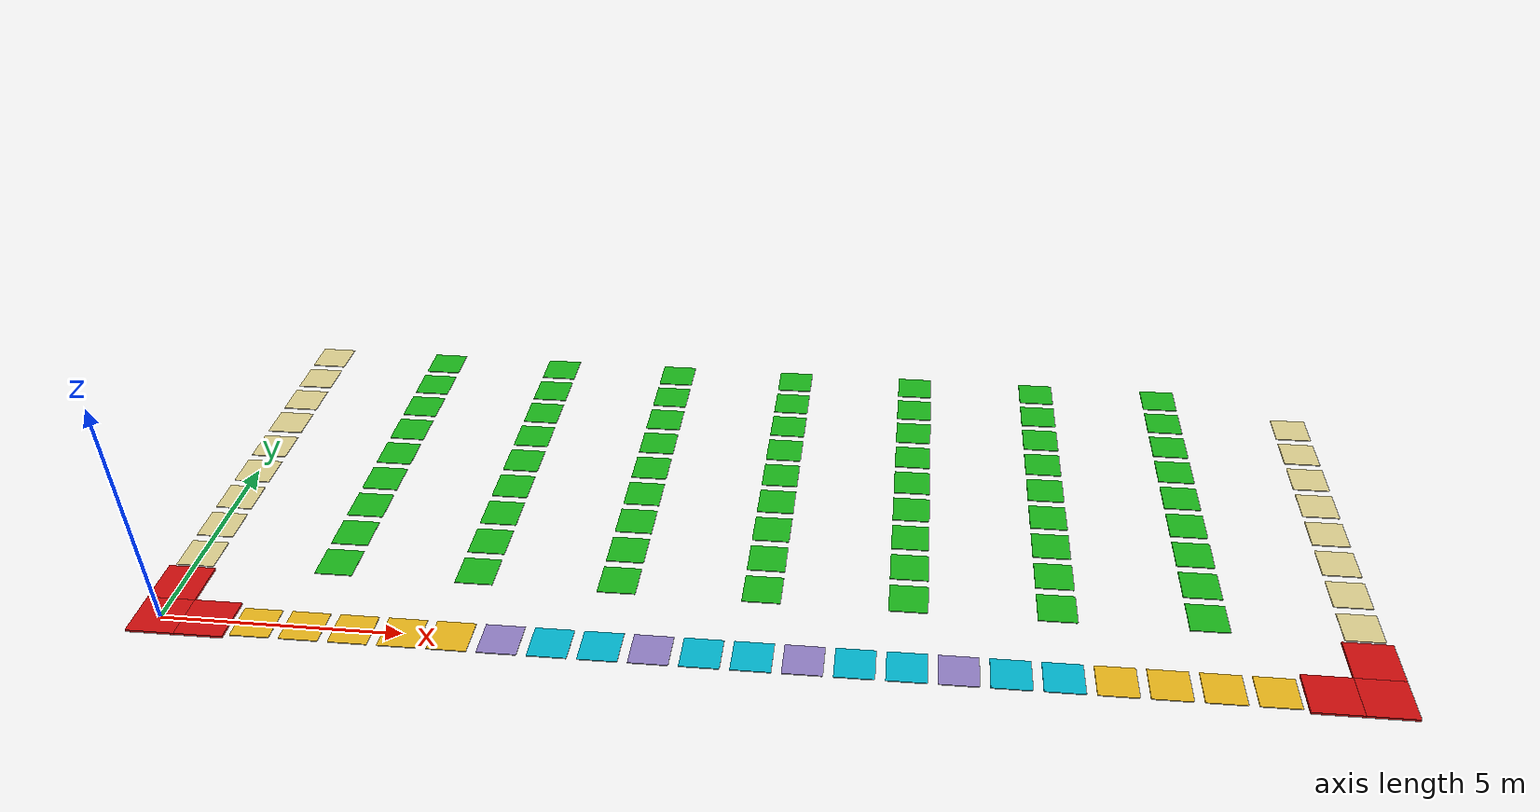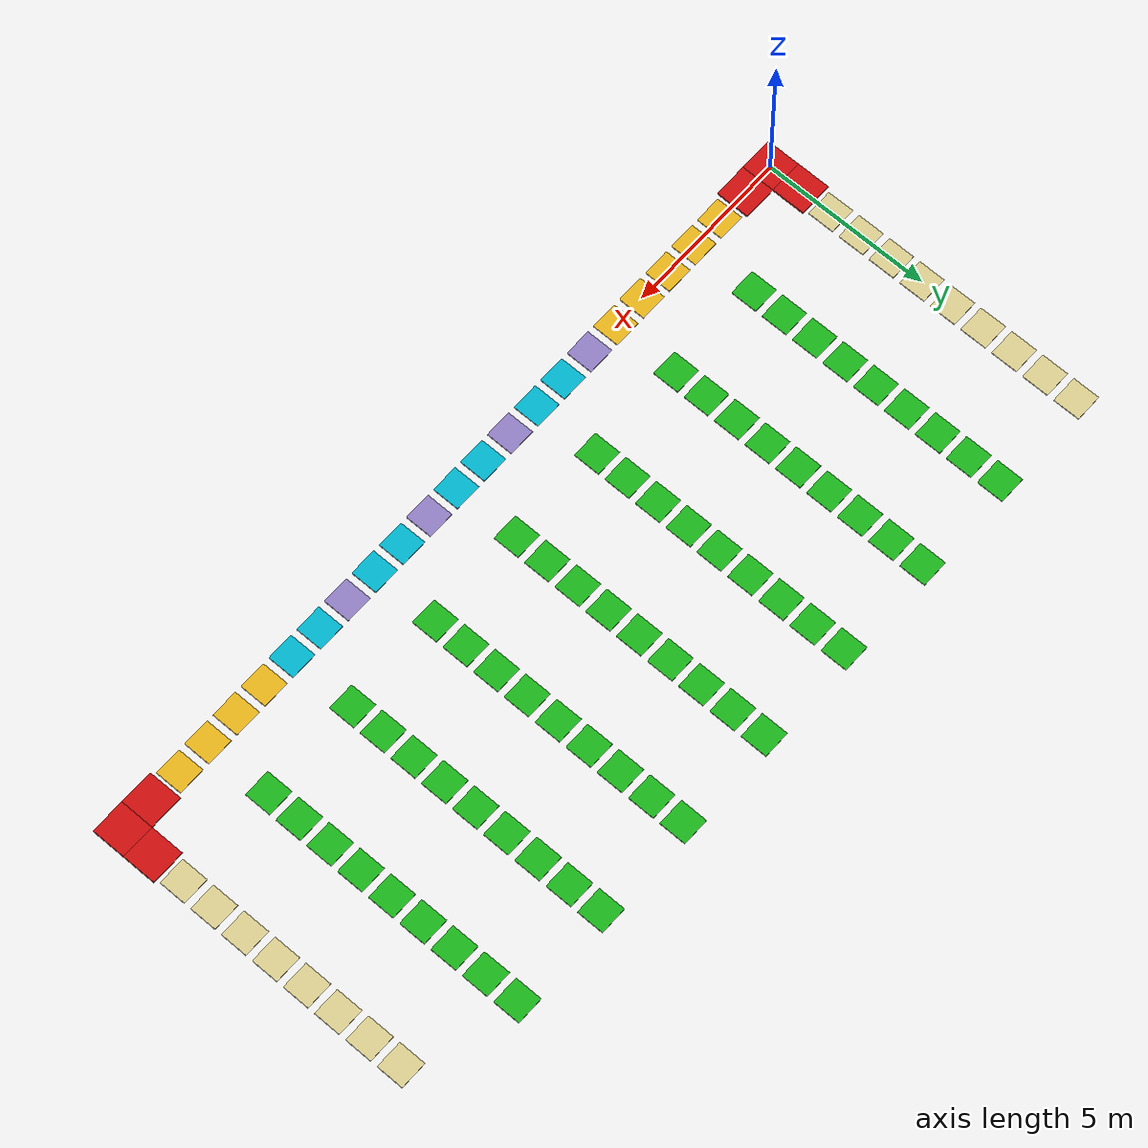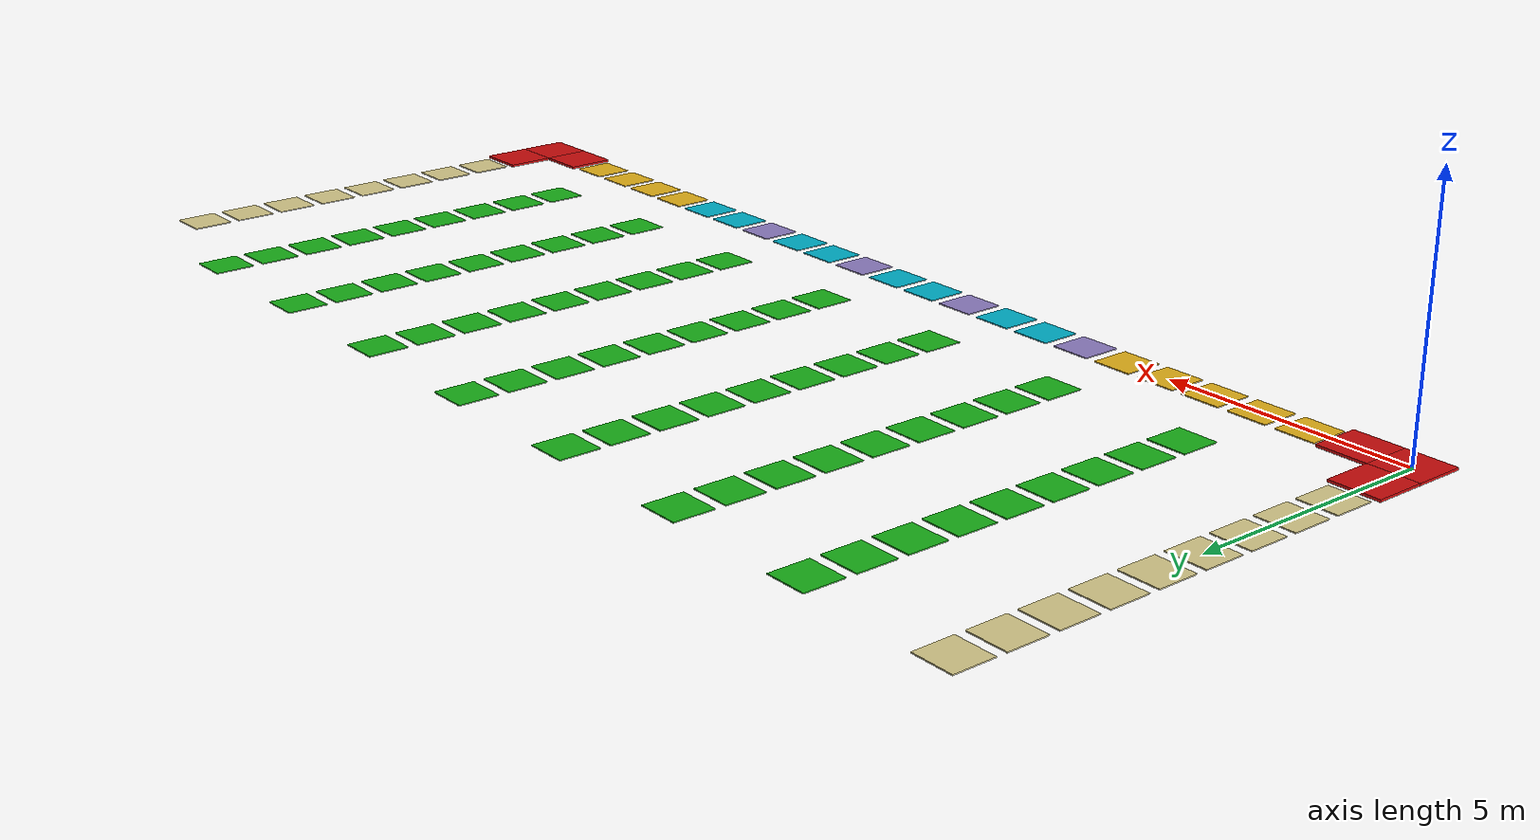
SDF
<sdf version="1.10">
 <world name="my_map_60">
  <model name="blocked_0000">
   <static>true</static>
   <pose>0.0
        0.0
        0.045
        0 0 0</pose>
   <link name="link">
    <visual name="visual">
     <geometry><box><size>1.0
                1.0
                0.05</size></box></geometry>
     <material><ambient>0.8 0.05 0.05 1</ambient><diffuse>0.8 0.05 0.05 1</diffuse></material>
    </visual>
   </link>
  </model>
  <model name="blocked_0001">
   <static>true</static>
   <pose>0.0
        1.0
        0.045
        0 0 0</pose>
   <link name="link">
    <visual name="visual">
     <geometry><box><size>1.0
                1.0
                0.05</size></box></geometry>
     <material><ambient>0.8 0.05 0.05 1</ambient><diffuse>0.8 0.05 0.05 1</diffuse></material>
    </visual>
   </link>
  </model>
  <model name="blocked_0004">
   <static>true</static>
   <pose>1.0
        0.0
        0.045
        0 0 0</pose>
   <link name="link">
    <visual name="visual">
     <geometry><box><size>1.0
                1.0
                0.05</size></box></geometry>
     <material><ambient>0.8 0.05 0.05 1</ambient><diffuse>0.8 0.05 0.05 1</diffuse></material>
    </visual>
   </link>
  </model>
  <model name="blocked_0006">
   <static>true</static>
   <pose>23.0
        0.0
        0.045
        0 0 0</pose>
   <link name="link">
    <visual name="visual">
     <geometry><box><size>1.0
                1.0
                0.05</size></box></geometry>
     <material><ambient>0.8 0.05 0.05 1</ambient><diffuse>0.8 0.05 0.05 1</diffuse></material>
    </visual>
   </link>
  </model>
  <model name="blocked_0008">
   <static>true</static>
   <pose>24.0
        0.0
        0.045
        0 0 0</pose>
   <link name="link">
    <visual name="visual">
     <geometry><box><size>1.0
                1.0
                0.05</size></box></geometry>
     <material><ambient>0.8 0.05 0.05 1</ambient><diffuse>0.8 0.05 0.05 1</diffuse></material>
    </visual>
   </link>
  </model>
  <model name="blocked_0009">
   <static>true</static>
   <pose>24.0
        1.0
        0.045
        0 0 0</pose>
   <link name="link">
    <visual name="visual">
     <geometry><box><size>1.0
                1.0
                0.05</size></box></geometry>
     <material><ambient>0.8 0.05 0.05 1</ambient><diffuse>0.8 0.05 0.05 1</diffuse></material>
    </visual>
   </link>
  </model>
  <model name="staging_045">
   <static>true</static>
   <pose>0.0
        10.0
        0.02
        0 0 0</pose>
   <link name="link">
    <visual name="visual">
     <geometry><box><size>0.8
                0.8
                0.02</size></box></geometry>
     <material><ambient>0.85 0.80 0.55 1</ambient><diffuse>0.85 0.80 0.55 1</diffuse></material>
    </visual>
   </link>
  </model>
  <model name="shelf_141">
   <static>true</static>
   <pose>3.0
        10.0
        0.02
        0 0 0</pose>
   <link name="link">
    <visual name="visual">
     <geometry><box><size>0.8
                0.8
                0.02</size></box></geometry>
     <material><ambient>0.10 0.70 0.10 1</ambient><diffuse>0.10 0.70 0.10 1</diffuse></material>
    </visual>
   </link>
  </model>
  <model name="shelf_142">
   <static>true</static>
   <pose>6.0
        10.0
        0.02
        0 0 0</pose>
   <link name="link">
    <visual name="visual">
     <geometry><box><size>0.8
                0.8
                0.02</size></box></geometry>
     <material><ambient>0.10 0.70 0.10 1</ambient><diffuse>0.10 0.70 0.10 1</diffuse></material>
    </visual>
   </link>
  </model>
  <model name="shelf_143">
   <static>true</static>
   <pose>9.0
        10.0
        0.02
        0 0 0</pose>
   <link name="link">
    <visual name="visual">
     <geometry><box><size>0.8
                0.8
                0.02</size></box></geometry>
     <material><ambient>0.10 0.70 0.10 1</ambient><diffuse>0.10 0.70 0.10 1</diffuse></material>
    </visual>
   </link>
  </model>
  <model name="shelf_144">
   <static>true</static>
   <pose>12.0
        10.0
        0.02
        0 0 0</pose>
   <link name="link">
    <visual name="visual">
     <geometry><box><size>0.8
                0.8
                0.02</size></box></geometry>
     <material><ambient>0.10 0.70 0.10 1</ambient><diffuse>0.10 0.70 0.10 1</diffuse></material>
    </visual>
   </link>
  </model>
  <model name="shelf_145">
   <static>true</static>
   <pose>15.0
        10.0
        0.02
        0 0 0</pose>
   <link name="link">
    <visual name="visual">
     <geometry><box><size>0.8
                0.8
                0.02</size></box></geometry>
     <material><ambient>0.10 0.70 0.10 1</ambient><diffuse>0.10 0.70 0.10 1</diffuse></material>
    </visual>
   </link>
  </model>
  <model name="shelf_146">
   <static>true</static>
   <pose>18.0
        10.0
        0.02
        0 0 0</pose>
   <link name="link">
    <visual name="visual">
     <geometry><box><size>0.8
                0.8
                0.02</size></box></geometry>
     <material><ambient>0.10 0.70 0.10 1</ambient><diffuse>0.10 0.70 0.10 1</diffuse></material>
    </visual>
   </link>
  </model>
  <model name="shelf_147">
   <static>true</static>
   <pose>21.0
        10.0
        0.02
        0 0 0</pose>
   <link name="link">
    <visual name="visual">
     <geometry><box><size>0.8
                0.8
                0.02</size></box></geometry>
     <material><ambient>0.10 0.70 0.10 1</ambient><diffuse>0.10 0.70 0.10 1</diffuse></material>
    </visual>
   </link>
  </model>
  <model name="staging_047">
   <static>true</static>
   <pose>0.0
        9.0
        0.02
        0 0 0</pose>
   <link name="link">
    <visual name="visual">
     <geometry><box><size>0.8
                0.8
                0.02</size></box></geometry>
     <material><ambient>0.85 0.80 0.55 1</ambient><diffuse>0.85 0.80 0.55 1</diffuse></material>
    </visual>
   </link>
  </model>
  <model name="shelf_148">
   <static>true</static>
   <pose>3.0
        9.0
        0.02
        0 0 0</pose>
   <link name="link">
    <visual name="visual">
     <geometry><box><size>0.8
                0.8
                0.02</size></box></geometry>
     <material><ambient>0.10 0.70 0.10 1</ambient><diffuse>0.10 0.70 0.10 1</diffuse></material>
    </visual>
   </link>
  </model>
  <model name="shelf_149">
   <static>true</static>
   <pose>6.0
        9.0
        0.02
        0 0 0</pose>
   <link name="link">
    <visual name="visual">
     <geometry><box><size>0.8
                0.8
                0.02</size></box></geometry>
     <material><ambient>0.10 0.70 0.10 1</ambient><diffuse>0.10 0.70 0.10 1</diffuse></material>
    </visual>
   </link>
  </model>
  <model name="shelf_150">
   <static>true</static>
   <pose>9.0
        9.0
        0.02
        0 0 0</pose>
   <link name="link">
    <visual name="visual">
     <geometry><box><size>0.8
                0.8
                0.02</size></box></geometry>
     <material><ambient>0.10 0.70 0.10 1</ambient><diffuse>0.10 0.70 0.10 1</diffuse></material>
    </visual>
   </link>
  </model>
  <model name="shelf_151">
   <static>true</static>
   <pose>12.0
        9.0
        0.02
        0 0 0</pose>
   <link name="link">
    <visual name="visual">
     <geometry><box><size>0.8
                0.8
                0.02</size></box></geometry>
     <material><ambient>0.10 0.70 0.10 1</ambient><diffuse>0.10 0.70 0.10 1</diffuse></material>
    </visual>
   </link>
  </model>
  <model name="shelf_152">
   <static>true</static>
   <pose>15.0
        9.0
        0.02
        0 0 0</pose>
   <link name="link">
    <visual name="visual">
     <geometry><box><size>0.8
                0.8
                0.02</size></box></geometry>
     <material><ambient>0.10 0.70 0.10 1</ambient><diffuse>0.10 0.70 0.10 1</diffuse></material>
    </visual>
   </link>
  </model>
  <model name="shelf_153">
   <static>true</static>
   <pose>18.0
        9.0
        0.02
        0 0 0</pose>
   <link name="link">
    <visual name="visual">
     <geometry><box><size>0.8
                0.8
                0.02</size></box></geometry>
     <material><ambient>0.10 0.70 0.10 1</ambient><diffuse>0.10 0.70 0.10 1</diffuse></material>
    </visual>
   </link>
  </model>
  <model name="shelf_154">
   <static>true</static>
   <pose>21.0
        9.0
        0.02
        0 0 0</pose>
   <link name="link">
    <visual name="visual">
     <geometry><box><size>0.8
                0.8
                0.02</size></box></geometry>
     <material><ambient>0.10 0.70 0.10 1</ambient><diffuse>0.10 0.70 0.10 1</diffuse></material>
    </visual>
   </link>
  </model>
  <model name="staging_048">
   <static>true</static>
   <pose>24.0
        9.0
        0.02
        0 0 0</pose>
   <link name="link">
    <visual name="visual">
     <geometry><box><size>0.8
                0.8
                0.02</size></box></geometry>
     <material><ambient>0.85 0.80 0.55 1</ambient><diffuse>0.85 0.80 0.55 1</diffuse></material>
    </visual>
   </link>
  </model>
  <model name="staging_049">
   <static>true</static>
   <pose>0.0
        8.0
        0.02
        0 0 0</pose>
   <link name="link">
    <visual name="visual">
     <geometry><box><size>0.8
                0.8
                0.02</size></box></geometry>
     <material><ambient>0.85 0.80 0.55 1</ambient><diffuse>0.85 0.80 0.55 1</diffuse></material>
    </visual>
   </link>
  </model>
  <model name="shelf_155">
   <static>true</static>
   <pose>3.0
        8.0
        0.02
        0 0 0</pose>
   <link name="link">
    <visual name="visual">
     <geometry><box><size>0.8
                0.8
                0.02</size></box></geometry>
     <material><ambient>0.10 0.70 0.10 1</ambient><diffuse>0.10 0.70 0.10 1</diffuse></material>
    </visual>
   </link>
  </model>
  <model name="shelf_156">
   <static>true</static>
   <pose>6.0
        8.0
        0.02
        0 0 0</pose>
   <link name="link">
    <visual name="visual">
     <geometry><box><size>0.8
                0.8
                0.02</size></box></geometry>
     <material><ambient>0.10 0.70 0.10 1</ambient><diffuse>0.10 0.70 0.10 1</diffuse></material>
    </visual>
   </link>
  </model>
  <model name="shelf_157">
   <static>true</static>
   <pose>9.0
        8.0
        0.02
        0 0 0</pose>
   <link name="link">
    <visual name="visual">
     <geometry><box><size>0.8
                0.8
                0.02</size></box></geometry>
     <material><ambient>0.10 0.70 0.10 1</ambient><diffuse>0.10 0.70 0.10 1</diffuse></material>
    </visual>
   </link>
  </model>
  <model name="shelf_158">
   <static>true</static>
   <pose>12.0
        8.0
        0.02
        0 0 0</pose>
   <link name="link">
    <visual name="visual">
     <geometry><box><size>0.8
                0.8
                0.02</size></box></geometry>
     <material><ambient>0.10 0.70 0.10 1</ambient><diffuse>0.10 0.70 0.10 1</diffuse></material>
    </visual>
   </link>
  </model>
  <model name="shelf_159">
   <static>true</static>
   <pose>15.0
        8.0
        0.02
        0 0 0</pose>
   <link name="link">
    <visual name="visual">
     <geometry><box><size>0.8
                0.8
                0.02</size></box></geometry>
     <material><ambient>0.10 0.70 0.10 1</ambient><diffuse>0.10 0.70 0.10 1</diffuse></material>
    </visual>
   </link>
  </model>
  <model name="shelf_160">
   <static>true</static>
   <pose>18.0
        8.0
        0.02
        0 0 0</pose>
   <link name="link">
    <visual name="visual">
     <geometry><box><size>0.8
                0.8
                0.02</size></box></geometry>
     <material><ambient>0.10 0.70 0.10 1</ambient><diffuse>0.10 0.70 0.10 1</diffuse></material>
    </visual>
   </link>
  </model>
  <model name="shelf_161">
   <static>true</static>
   <pose>21.0
        8.0
        0.02
        0 0 0</pose>
   <link name="link">
    <visual name="visual">
     <geometry><box><size>0.8
                0.8
                0.02</size></box></geometry>
     <material><ambient>0.10 0.70 0.10 1</ambient><diffuse>0.10 0.70 0.10 1</diffuse></material>
    </visual>
   </link>
  </model>
  <model name="staging_050">
   <static>true</static>
   <pose>24.0
        8.0
        0.02
        0 0 0</pose>
   <link name="link">
    <visual name="visual">
     <geometry><box><size>0.8
                0.8
                0.02</size></box></geometry>
     <material><ambient>0.85 0.80 0.55 1</ambient><diffuse>0.85 0.80 0.55 1</diffuse></material>
    </visual>
   </link>
  </model>
  <model name="staging_051">
   <static>true</static>
   <pose>0.0
        7.0
        0.02
        0 0 0</pose>
   <link name="link">
    <visual name="visual">
     <geometry><box><size>0.8
                0.8
                0.02</size></box></geometry>
     <material><ambient>0.85 0.80 0.55 1</ambient><diffuse>0.85 0.80 0.55 1</diffuse></material>
    </visual>
   </link>
  </model>
  <model name="shelf_162">
   <static>true</static>
   <pose>3.0
        7.0
        0.02
        0 0 0</pose>
   <link name="link">
    <visual name="visual">
     <geometry><box><size>0.8
                0.8
                0.02</size></box></geometry>
     <material><ambient>0.10 0.70 0.10 1</ambient><diffuse>0.10 0.70 0.10 1</diffuse></material>
    </visual>
   </link>
  </model>
  <model name="shelf_163">
   <static>true</static>
   <pose>6.0
        7.0
        0.02
        0 0 0</pose>
   <link name="link">
    <visual name="visual">
     <geometry><box><size>0.8
                0.8
                0.02</size></box></geometry>
     <material><ambient>0.10 0.70 0.10 1</ambient><diffuse>0.10 0.70 0.10 1</diffuse></material>
    </visual>
   </link>
  </model>
  <model name="shelf_164">
   <static>true</static>
   <pose>9.0
        7.0
        0.02
        0 0 0</pose>
   <link name="link">
    <visual name="visual">
     <geometry><box><size>0.8
                0.8
                0.02</size></box></geometry>
     <material><ambient>0.10 0.70 0.10 1</ambient><diffuse>0.10 0.70 0.10 1</diffuse></material>
    </visual>
   </link>
  </model>
  <model name="shelf_165">
   <static>true</static>
   <pose>12.0
        7.0
        0.02
        0 0 0</pose>
   <link name="link">
    <visual name="visual">
     <geometry><box><size>0.8
                0.8
                0.02</size></box></geometry>
     <material><ambient>0.10 0.70 0.10 1</ambient><diffuse>0.10 0.70 0.10 1</diffuse></material>
    </visual>
   </link>
  </model>
  <model name="shelf_166">
   <static>true</static>
   <pose>15.0
        7.0
        0.02
        0 0 0</pose>
   <link name="link">
    <visual name="visual">
     <geometry><box><size>0.8
                0.8
                0.02</size></box></geometry>
     <material><ambient>0.10 0.70 0.10 1</ambient><diffuse>0.10 0.70 0.10 1</diffuse></material>
    </visual>
   </link>
  </model>
  <model name="shelf_167">
   <static>true</static>
   <pose>18.0
        7.0
        0.02
        0 0 0</pose>
   <link name="link">
    <visual name="visual">
     <geometry><box><size>0.8
                0.8
                0.02</size></box></geometry>
     <material><ambient>0.10 0.70 0.10 1</ambient><diffuse>0.10 0.70 0.10 1</diffuse></material>
    </visual>
   </link>
  </model>
  <model name="shelf_168">
   <static>true</static>
   <pose>21.0
        7.0
        0.02
        0 0 0</pose>
   <link name="link">
    <visual name="visual">
     <geometry><box><size>0.8
                0.8
                0.02</size></box></geometry>
     <material><ambient>0.10 0.70 0.10 1</ambient><diffuse>0.10 0.70 0.10 1</diffuse></material>
    </visual>
   </link>
  </model>
  <model name="staging_052">
   <static>true</static>
   <pose>24.0
        7.0
        0.02
        0 0 0</pose>
   <link name="link">
    <visual name="visual">
     <geometry><box><size>0.8
                0.8
                0.02</size></box></geometry>
     <material><ambient>0.85 0.80 0.55 1</ambient><diffuse>0.85 0.80 0.55 1</diffuse></material>
    </visual>
   </link>
  </model>
  <model name="staging_053">
   <static>true</static>
   <pose>0.0
        6.0
        0.02
        0 0 0</pose>
   <link name="link">
    <visual name="visual">
     <geometry><box><size>0.8
                0.8
                0.02</size></box></geometry>
     <material><ambient>0.85 0.80 0.55 1</ambient><diffuse>0.85 0.80 0.55 1</diffuse></material>
    </visual>
   </link>
  </model>
  <model name="shelf_169">
   <static>true</static>
   <pose>3.0
        6.0
        0.02
        0 0 0</pose>
   <link name="link">
    <visual name="visual">
     <geometry><box><size>0.8
                0.8
                0.02</size></box></geometry>
     <material><ambient>0.10 0.70 0.10 1</ambient><diffuse>0.10 0.70 0.10 1</diffuse></material>
    </visual>
   </link>
  </model>
  <model name="shelf_170">
   <static>true</static>
   <pose>6.0
        6.0
        0.02
        0 0 0</pose>
   <link name="link">
    <visual name="visual">
     <geometry><box><size>0.8
                0.8
                0.02</size></box></geometry>
     <material><ambient>0.10 0.70 0.10 1</ambient><diffuse>0.10 0.70 0.10 1</diffuse></material>
    </visual>
   </link>
  </model>
  <model name="shelf_171">
   <static>true</static>
   <pose>9.0
        6.0
        0.02
        0 0 0</pose>
   <link name="link">
    <visual name="visual">
     <geometry><box><size>0.8
                0.8
                0.02</size></box></geometry>
     <material><ambient>0.10 0.70 0.10 1</ambient><diffuse>0.10 0.70 0.10 1</diffuse></material>
    </visual>
   </link>
  </model>
  <model name="shelf_172">
   <static>true</static>
   <pose>12.0
        6.0
        0.02
        0 0 0</pose>
   <link name="link">
    <visual name="visual">
     <geometry><box><size>0.8
                0.8
                0.02</size></box></geometry>
     <material><ambient>0.10 0.70 0.10 1</ambient><diffuse>0.10 0.70 0.10 1</diffuse></material>
    </visual>
   </link>
  </model>
  <model name="shelf_173">
   <static>true</static>
   <pose>15.0
        6.0
        0.02
        0 0 0</pose>
   <link name="link">
    <visual name="visual">
     <geometry><box><size>0.8
                0.8
                0.02</size></box></geometry>
     <material><ambient>0.10 0.70 0.10 1</ambient><diffuse>0.10 0.70 0.10 1</diffuse></material>
    </visual>
   </link>
  </model>
  <model name="shelf_174">
   <static>true</static>
   <pose>18.0
        6.0
        0.02
        0 0 0</pose>
   <link name="link">
    <visual name="visual">
     <geometry><box><size>0.8
                0.8
                0.02</size></box></geometry>
     <material><ambient>0.10 0.70 0.10 1</ambient><diffuse>0.10 0.70 0.10 1</diffuse></material>
    </visual>
   </link>
  </model>
  <model name="shelf_175">
   <static>true</static>
   <pose>21.0
        6.0
        0.02
        0 0 0</pose>
   <link name="link">
    <visual name="visual">
     <geometry><box><size>0.8
                0.8
                0.02</size></box></geometry>
     <material><ambient>0.10 0.70 0.10 1</ambient><diffuse>0.10 0.70 0.10 1</diffuse></material>
    </visual>
   </link>
  </model>
  <model name="staging_054">
   <static>true</static>
   <pose>24.0
        6.0
        0.02
        0 0 0</pose>
   <link name="link">
    <visual name="visual">
     <geometry><box><size>0.8
                0.8
                0.02</size></box></geometry>
     <material><ambient>0.85 0.80 0.55 1</ambient><diffuse>0.85 0.80 0.55 1</diffuse></material>
    </visual>
   </link>
  </model>
  <model name="staging_055">
   <static>true</static>
   <pose>0.0
        5.0
        0.02
        0 0 0</pose>
   <link name="link">
    <visual name="visual">
     <geometry><box><size>0.8
                0.8
                0.02</size></box></geometry>
     <material><ambient>0.85 0.80 0.55 1</ambient><diffuse>0.85 0.80 0.55 1</diffuse></material>
    </visual>
   </link>
  </model>
  <model name="shelf_176">
   <static>true</static>
   <pose>3.0
        5.0
        0.02
        0 0 0</pose>
   <link name="link">
    <visual name="visual">
     <geometry><box><size>0.8
                0.8
                0.02</size></box></geometry>
     <material><ambient>0.10 0.70 0.10 1</ambient><diffuse>0.10 0.70 0.10 1</diffuse></material>
    </visual>
   </link>
  </model>
  <model name="shelf_177">
   <static>true</static>
   <pose>6.0
        5.0
        0.02
        0 0 0</pose>
   <link name="link">
    <visual name="visual">
     <geometry><box><size>0.8
                0.8
                0.02</size></box></geometry>
     <material><ambient>0.10 0.70 0.10 1</ambient><diffuse>0.10 0.70 0.10 1</diffuse></material>
    </visual>
   </link>
  </model>
  <model name="shelf_178">
   <static>true</static>
   <pose>9.0
        5.0
        0.02
        0 0 0</pose>
   <link name="link">
    <visual name="visual">
     <geometry><box><size>0.8
                0.8
                0.02</size></box></geometry>
     <material><ambient>0.10 0.70 0.10 1</ambient><diffuse>0.10 0.70 0.10 1</diffuse></material>
    </visual>
   </link>
  </model>
  <model name="shelf_179">
   <static>true</static>
   <pose>12.0
        5.0
        0.02
        0 0 0</pose>
   <link name="link">
    <visual name="visual">
     <geometry><box><size>0.8
                0.8
                0.02</size></box></geometry>
     <material><ambient>0.10 0.70 0.10 1</ambient><diffuse>0.10 0.70 0.10 1</diffuse></material>
    </visual>
   </link>
  </model>
  <model name="shelf_180">
   <static>true</static>
   <pose>15.0
        5.0
        0.02
        0 0 0</pose>
   <link name="link">
    <visual name="visual">
     <geometry><box><size>0.8
                0.8
                0.02</size></box></geometry>
     <material><ambient>0.10 0.70 0.10 1</ambient><diffuse>0.10 0.70 0.10 1</diffuse></material>
    </visual>
   </link>
  </model>
  <model name="shelf_181">
   <static>true</static>
   <pose>18.0
        5.0
        0.02
        0 0 0</pose>
   <link name="link">
    <visual name="visual">
     <geometry><box><size>0.8
                0.8
                0.02</size></box></geometry>
     <material><ambient>0.10 0.70 0.10 1</ambient><diffuse>0.10 0.70 0.10 1</diffuse></material>
    </visual>
   </link>
  </model>
  <model name="shelf_182">
   <static>true</static>
   <pose>21.0
        5.0
        0.02
        0 0 0</pose>
   <link name="link">
    <visual name="visual">
     <geometry><box><size>0.8
                0.8
                0.02</size></box></geometry>
     <material><ambient>0.10 0.70 0.10 1</ambient><diffuse>0.10 0.70 0.10 1</diffuse></material>
    </visual>
   </link>
  </model>
  <model name="staging_056">
   <static>true</static>
   <pose>24.0
        5.0
        0.02
        0 0 0</pose>
   <link name="link">
    <visual name="visual">
     <geometry><box><size>0.8
                0.8
                0.02</size></box></geometry>
     <material><ambient>0.85 0.80 0.55 1</ambient><diffuse>0.85 0.80 0.55 1</diffuse></material>
    </visual>
   </link>
  </model>
  <model name="staging_057">
   <static>true</static>
   <pose>0.0
        4.0
        0.02
        0 0 0</pose>
   <link name="link">
    <visual name="visual">
     <geometry><box><size>0.8
                0.8
                0.02</size></box></geometry>
     <material><ambient>0.85 0.80 0.55 1</ambient><diffuse>0.85 0.80 0.55 1</diffuse></material>
    </visual>
   </link>
  </model>
  <model name="shelf_183">
   <static>true</static>
   <pose>3.0
        4.0
        0.02
        0 0 0</pose>
   <link name="link">
    <visual name="visual">
     <geometry><box><size>0.8
                0.8
                0.02</size></box></geometry>
     <material><ambient>0.10 0.70 0.10 1</ambient><diffuse>0.10 0.70 0.10 1</diffuse></material>
    </visual>
   </link>
  </model>
  <model name="shelf_184">
   <static>true</static>
   <pose>6.0
        4.0
        0.02
        0 0 0</pose>
   <link name="link">
    <visual name="visual">
     <geometry><box><size>0.8
                0.8
                0.02</size></box></geometry>
     <material><ambient>0.10 0.70 0.10 1</ambient><diffuse>0.10 0.70 0.10 1</diffuse></material>
    </visual>
   </link>
  </model>
  <model name="shelf_185">
   <static>true</static>
   <pose>9.0
        4.0
        0.02
        0 0 0</pose>
   <link name="link">
    <visual name="visual">
     <geometry><box><size>0.8
                0.8
                0.02</size></box></geometry>
     <material><ambient>0.10 0.70 0.10 1</ambient><diffuse>0.10 0.70 0.10 1</diffuse></material>
    </visual>
   </link>
  </model>
  <model name="shelf_186">
   <static>true</static>
   <pose>12.0
        4.0
        0.02
        0 0 0</pose>
   <link name="link">
    <visual name="visual">
     <geometry><box><size>0.8
                0.8
                0.02</size></box></geometry>
     <material><ambient>0.10 0.70 0.10 1</ambient><diffuse>0.10 0.70 0.10 1</diffuse></material>
    </visual>
   </link>
  </model>
  <model name="shelf_187">
   <static>true</static>
   <pose>15.0
        4.0
        0.02
        0 0 0</pose>
   <link name="link">
    <visual name="visual">
     <geometry><box><size>0.8
                0.8
                0.02</size></box></geometry>
     <material><ambient>0.10 0.70 0.10 1</ambient><diffuse>0.10 0.70 0.10 1</diffuse></material>
    </visual>
   </link>
  </model>
  <model name="shelf_188">
   <static>true</static>
   <pose>18.0
        4.0
        0.02
        0 0 0</pose>
   <link name="link">
    <visual name="visual">
     <geometry><box><size>0.8
                0.8
                0.02</size></box></geometry>
     <material><ambient>0.10 0.70 0.10 1</ambient><diffuse>0.10 0.70 0.10 1</diffuse></material>
    </visual>
   </link>
  </model>
  <model name="shelf_189">
   <static>true</static>
   <pose>21.0
        4.0
        0.02
        0 0 0</pose>
   <link name="link">
    <visual name="visual">
     <geometry><box><size>0.8
                0.8
                0.02</size></box></geometry>
     <material><ambient>0.10 0.70 0.10 1</ambient><diffuse>0.10 0.70 0.10 1</diffuse></material>
    </visual>
   </link>
  </model>
  <model name="staging_058">
   <static>true</static>
   <pose>24.0
        4.0
        0.02
        0 0 0</pose>
   <link name="link">
    <visual name="visual">
     <geometry><box><size>0.8
                0.8
                0.02</size></box></geometry>
     <material><ambient>0.85 0.80 0.55 1</ambient><diffuse>0.85 0.80 0.55 1</diffuse></material>
    </visual>
   </link>
  </model>
  <model name="staging_059">
   <static>true</static>
   <pose>0.0
        3.0
        0.02
        0 0 0</pose>
   <link name="link">
    <visual name="visual">
     <geometry><box><size>0.8
                0.8
                0.02</size></box></geometry>
     <material><ambient>0.85 0.80 0.55 1</ambient><diffuse>0.85 0.80 0.55 1</diffuse></material>
    </visual>
   </link>
  </model>
  <model name="shelf_190">
   <static>true</static>
   <pose>3.0
        3.0
        0.02
        0 0 0</pose>
   <link name="link">
    <visual name="visual">
     <geometry><box><size>0.8
                0.8
                0.02</size></box></geometry>
     <material><ambient>0.10 0.70 0.10 1</ambient><diffuse>0.10 0.70 0.10 1</diffuse></material>
    </visual>
   </link>
  </model>
  <model name="shelf_191">
   <static>true</static>
   <pose>6.0
        3.0
        0.02
        0 0 0</pose>
   <link name="link">
    <visual name="visual">
     <geometry><box><size>0.8
                0.8
                0.02</size></box></geometry>
     <material><ambient>0.10 0.70 0.10 1</ambient><diffuse>0.10 0.70 0.10 1</diffuse></material>
    </visual>
   </link>
  </model>
  <model name="shelf_192">
   <static>true</static>
   <pose>9.0
        3.0
        0.02
        0 0 0</pose>
   <link name="link">
    <visual name="visual">
     <geometry><box><size>0.8
                0.8
                0.02</size></box></geometry>
     <material><ambient>0.10 0.70 0.10 1</ambient><diffuse>0.10 0.70 0.10 1</diffuse></material>
    </visual>
   </link>
  </model>
  <model name="shelf_193">
   <static>true</static>
   <pose>12.0
        3.0
        0.02
        0 0 0</pose>
   <link name="link">
    <visual name="visual">
     <geometry><box><size>0.8
                0.8
                0.02</size></box></geometry>
     <material><ambient>0.10 0.70 0.10 1</ambient><diffuse>0.10 0.70 0.10 1</diffuse></material>
    </visual>
   </link>
  </model>
  <model name="shelf_194">
   <static>true</static>
   <pose>15.0
        3.0
        0.02
        0 0 0</pose>
   <link name="link">
    <visual name="visual">
     <geometry><box><size>0.8
                0.8
                0.02</size></box></geometry>
     <material><ambient>0.10 0.70 0.10 1</ambient><diffuse>0.10 0.70 0.10 1</diffuse></material>
    </visual>
   </link>
  </model>
  <model name="shelf_195">
   <static>true</static>
   <pose>18.0
        3.0
        0.02
        0 0 0</pose>
   <link name="link">
    <visual name="visual">
     <geometry><box><size>0.8
                0.8
                0.02</size></box></geometry>
     <material><ambient>0.10 0.70 0.10 1</ambient><diffuse>0.10 0.70 0.10 1</diffuse></material>
    </visual>
   </link>
  </model>
  <model name="shelf_196">
   <static>true</static>
   <pose>21.0
        3.0
        0.02
        0 0 0</pose>
   <link name="link">
    <visual name="visual">
     <geometry><box><size>0.8
                0.8
                0.02</size></box></geometry>
     <material><ambient>0.10 0.70 0.10 1</ambient><diffuse>0.10 0.70 0.10 1</diffuse></material>
    </visual>
   </link>
  </model>
  <model name="staging_060">
   <static>true</static>
   <pose>24.0
        3.0
        0.02
        0 0 0</pose>
   <link name="link">
    <visual name="visual">
     <geometry><box><size>0.8
                0.8
                0.02</size></box></geometry>
     <material><ambient>0.85 0.80 0.55 1</ambient><diffuse>0.85 0.80 0.55 1</diffuse></material>
    </visual>
   </link>
  </model>
  <model name="staging_061">
   <static>true</static>
   <pose>0.0
        2.0
        0.02
        0 0 0</pose>
   <link name="link">
    <visual name="visual">
     <geometry><box><size>0.8
                0.8
                0.02</size></box></geometry>
     <material><ambient>0.85 0.80 0.55 1</ambient><diffuse>0.85 0.80 0.55 1</diffuse></material>
    </visual>
   </link>
  </model>
  <model name="shelf_197">
   <static>true</static>
   <pose>3.0
        2.0
        0.02
        0 0 0</pose>
   <link name="link">
    <visual name="visual">
     <geometry><box><size>0.8
                0.8
                0.02</size></box></geometry>
     <material><ambient>0.10 0.70 0.10 1</ambient><diffuse>0.10 0.70 0.10 1</diffuse></material>
    </visual>
   </link>
  </model>
  <model name="shelf_198">
   <static>true</static>
   <pose>6.0
        2.0
        0.02
        0 0 0</pose>
   <link name="link">
    <visual name="visual">
     <geometry><box><size>0.8
                0.8
                0.02</size></box></geometry>
     <material><ambient>0.10 0.70 0.10 1</ambient><diffuse>0.10 0.70 0.10 1</diffuse></material>
    </visual>
   </link>
  </model>
  <model name="shelf_199">
   <static>true</static>
   <pose>9.0
        2.0
        0.02
        0 0 0</pose>
   <link name="link">
    <visual name="visual">
     <geometry><box><size>0.8
                0.8
                0.02</size></box></geometry>
     <material><ambient>0.10 0.70 0.10 1</ambient><diffuse>0.10 0.70 0.10 1</diffuse></material>
    </visual>
   </link>
  </model>
  <model name="shelf_200">
   <static>true</static>
   <pose>12.0
        2.0
        0.02
        0 0 0</pose>
   <link name="link">
    <visual name="visual">
     <geometry><box><size>0.8
                0.8
                0.02</size></box></geometry>
     <material><ambient>0.10 0.70 0.10 1</ambient><diffuse>0.10 0.70 0.10 1</diffuse></material>
    </visual>
   </link>
  </model>
  <model name="shelf_201">
   <static>true</static>
   <pose>15.0
        2.0
        0.02
        0 0 0</pose>
   <link name="link">
    <visual name="visual">
     <geometry><box><size>0.8
                0.8
                0.02</size></box></geometry>
     <material><ambient>0.10 0.70 0.10 1</ambient><diffuse>0.10 0.70 0.10 1</diffuse></material>
    </visual>
   </link>
  </model>
  <model name="shelf_202">
   <static>true</static>
   <pose>18.0
        2.0
        0.02
        0 0 0</pose>
   <link name="link">
    <visual name="visual">
     <geometry><box><size>0.8
                0.8
                0.02</size></box></geometry>
     <material><ambient>0.10 0.70 0.10 1</ambient><diffuse>0.10 0.70 0.10 1</diffuse></material>
    </visual>
   </link>
  </model>
  <model name="shelf_203">
   <static>true</static>
   <pose>21.0
        2.0
        0.02
        0 0 0</pose>
   <link name="link">
    <visual name="visual">
     <geometry><box><size>0.8
                0.8
                0.02</size></box></geometry>
     <material><ambient>0.10 0.70 0.10 1</ambient><diffuse>0.10 0.70 0.10 1</diffuse></material>
    </visual>
   </link>
  </model>
  <model name="staging_062">
   <static>true</static>
   <pose>24.0
        2.0
        0.02
        0 0 0</pose>
   <link name="link">
    <visual name="visual">
     <geometry><box><size>0.8
                0.8
                0.02</size></box></geometry>
     <material><ambient>0.85 0.80 0.55 1</ambient><diffuse>0.85 0.80 0.55 1</diffuse></material>
    </visual>
   </link>
  </model>
  <model name="dropoff_013">
   <static>true</static>
   <pose>2.0
        0.0
        0.02
        0 0 0</pose>
   <link name="link">
    <visual name="visual">
     <geometry><box><size>0.8
                0.8
                0.02</size></box></geometry>
     <material><ambient>0.90 0.70 0.10 1</ambient><diffuse>0.90 0.70 0.10 1</diffuse></material>
    </visual>
   </link>
  </model>
  <model name="dropoff_014">
   <static>true</static>
   <pose>3.0
        0.0
        0.02
        0 0 0</pose>
   <link name="link">
    <visual name="visual">
     <geometry><box><size>0.8
                0.8
                0.02</size></box></geometry>
     <material><ambient>0.90 0.70 0.10 1</ambient><diffuse>0.90 0.70 0.10 1</diffuse></material>
    </visual>
   </link>
  </model>
  <model name="dropoff_015">
   <static>true</static>
   <pose>4.0
        0.0
        0.02
        0 0 0</pose>
   <link name="link">
    <visual name="visual">
     <geometry><box><size>0.8
                0.8
                0.02</size></box></geometry>
     <material><ambient>0.90 0.70 0.10 1</ambient><diffuse>0.90 0.70 0.10 1</diffuse></material>
    </visual>
   </link>
  </model>
  <model name="dropoff_016">
   <static>true</static>
   <pose>5.0
        0.0
        0.02
        0 0 0</pose>
   <link name="link">
    <visual name="visual">
     <geometry><box><size>0.8
                0.8
                0.02</size></box></geometry>
     <material><ambient>0.90 0.70 0.10 1</ambient><diffuse>0.90 0.70 0.10 1</diffuse></material>
    </visual>
   </link>
  </model>
  <model name="dropoff_017">
   <static>true</static>
   <pose>6.0
        0.0
        0.02
        0 0 0</pose>
   <link name="link">
    <visual name="visual">
     <geometry><box><size>0.8
                0.8
                0.02</size></box></geometry>
     <material><ambient>0.90 0.70 0.10 1</ambient><diffuse>0.90 0.70 0.10 1</diffuse></material>
    </visual>
   </link>
  </model>
  <model name="charge_queue_004">
   <static>true</static>
   <pose>7.0
        0.0
        0.02
        0 0 0</pose>
   <link name="link">
    <visual name="visual">
     <geometry><box><size>0.8
                0.8
                0.02</size></box></geometry>
     <material><ambient>0.56 0.49 0.76 1</ambient><diffuse>0.56 0.49 0.76 1</diffuse></material>
    </visual>
   </link>
  </model>
  <model name="charging_007">
   <static>true</static>
   <pose>8.0
        0.0
        0.02
        0 0 0</pose>
   <link name="link">
    <visual name="visual">
     <geometry><box><size>0.8
                0.8
                0.02</size></box></geometry>
     <material><ambient>0.00 0.70 0.80 1</ambient><diffuse>0.00 0.70 0.80 1</diffuse></material>
    </visual>
   </link>
  </model>
  <model name="charging_008">
   <static>true</static>
   <pose>9.0
        0.0
        0.02
        0 0 0</pose>
   <link name="link">
    <visual name="visual">
     <geometry><box><size>0.8
                0.8
                0.02</size></box></geometry>
     <material><ambient>0.00 0.70 0.80 1</ambient><diffuse>0.00 0.70 0.80 1</diffuse></material>
    </visual>
   </link>
  </model>
  <model name="charge_queue_005">
   <static>true</static>
   <pose>10.0
        0.0
        0.02
        0 0 0</pose>
   <link name="link">
    <visual name="visual">
     <geometry><box><size>0.8
                0.8
                0.02</size></box></geometry>
     <material><ambient>0.56 0.49 0.76 1</ambient><diffuse>0.56 0.49 0.76 1</diffuse></material>
    </visual>
   </link>
  </model>
  <model name="charging_009">
   <static>true</static>
   <pose>11.0
        0.0
        0.02
        0 0 0</pose>
   <link name="link">
    <visual name="visual">
     <geometry><box><size>0.8
                0.8
                0.02</size></box></geometry>
     <material><ambient>0.00 0.70 0.80 1</ambient><diffuse>0.00 0.70 0.80 1</diffuse></material>
    </visual>
   </link>
  </model>
  <model name="charging_010">
   <static>true</static>
   <pose>12.0
        0.0
        0.02
        0 0 0</pose>
   <link name="link">
    <visual name="visual">
     <geometry><box><size>0.8
                0.8
                0.02</size></box></geometry>
     <material><ambient>0.00 0.70 0.80 1</ambient><diffuse>0.00 0.70 0.80 1</diffuse></material>
    </visual>
   </link>
  </model>
  <model name="charge_queue_006">
   <static>true</static>
   <pose>13.0
        0.0
        0.02
        0 0 0</pose>
   <link name="link">
    <visual name="visual">
     <geometry><box><size>0.8
                0.8
                0.02</size></box></geometry>
     <material><ambient>0.56 0.49 0.76 1</ambient><diffuse>0.56 0.49 0.76 1</diffuse></material>
    </visual>
   </link>
  </model>
  <model name="charging_011">
   <static>true</static>
   <pose>14.0
        0.0
        0.02
        0 0 0</pose>
   <link name="link">
    <visual name="visual">
     <geometry><box><size>0.8
                0.8
                0.02</size></box></geometry>
     <material><ambient>0.00 0.70 0.80 1</ambient><diffuse>0.00 0.70 0.80 1</diffuse></material>
    </visual>
   </link>
  </model>
  <model name="charging_012">
   <static>true</static>
   <pose>15.0
        0.0
        0.02
        0 0 0</pose>
   <link name="link">
    <visual name="visual">
     <geometry><box><size>0.8
                0.8
                0.02</size></box></geometry>
     <material><ambient>0.00 0.70 0.80 1</ambient><diffuse>0.00 0.70 0.80 1</diffuse></material>
    </visual>
   </link>
  </model>
  <model name="charge_queue_007">
   <static>true</static>
   <pose>16.0
        0.0
        0.02
        0 0 0</pose>
   <link name="link">
    <visual name="visual">
     <geometry><box><size>0.8
                0.8
                0.02</size></box></geometry>
     <material><ambient>0.56 0.49 0.76 1</ambient><diffuse>0.56 0.49 0.76 1</diffuse></material>
    </visual>
   </link>
  </model>
  <model name="charging_013">
   <static>true</static>
   <pose>17.0
        0.0
        0.02
        0 0 0</pose>
   <link name="link">
    <visual name="visual">
     <geometry><box><size>0.8
                0.8
                0.02</size></box></geometry>
     <material><ambient>0.00 0.70 0.80 1</ambient><diffuse>0.00 0.70 0.80 1</diffuse></material>
    </visual>
   </link>
  </model>
  <model name="charging_014">
   <static>true</static>
   <pose>18.0
        0.0
        0.02
        0 0 0</pose>
   <link name="link">
    <visual name="visual">
     <geometry><box><size>0.8
                0.8
                0.02</size></box></geometry>
     <material><ambient>0.00 0.70 0.80 1</ambient><diffuse>0.00 0.70 0.80 1</diffuse></material>
    </visual>
   </link>
  </model>
  <model name="dropoff_018">
   <static>true</static>
   <pose>19.0
        0.0
        0.02
        0 0 0</pose>
   <link name="link">
    <visual name="visual">
     <geometry><box><size>0.8
                0.8
                0.02</size></box></geometry>
     <material><ambient>0.90 0.70 0.10 1</ambient><diffuse>0.90 0.70 0.10 1</diffuse></material>
    </visual>
   </link>
  </model>
  <model name="dropoff_019">
   <static>true</static>
   <pose>20.0
        0.0
        0.02
        0 0 0</pose>
   <link name="link">
    <visual name="visual">
     <geometry><box><size>0.8
                0.8
                0.02</size></box></geometry>
     <material><ambient>0.90 0.70 0.10 1</ambient><diffuse>0.90 0.70 0.10 1</diffuse></material>
    </visual>
   </link>
  </model>
  <model name="dropoff_020">
   <static>true</static>
   <pose>21.0
        0.0
        0.02
        0 0 0</pose>
   <link name="link">
    <visual name="visual">
     <geometry><box><size>0.8
                0.8
                0.02</size></box></geometry>
     <material><ambient>0.90 0.70 0.10 1</ambient><diffuse>0.90 0.70 0.10 1</diffuse></material>
    </visual>
   </link>
  </model>
  <model name="dropoff_021">
   <static>true</static>
   <pose>22.0
        0.0
        0.02
        0 0 0</pose>
   <link name="link">
    <visual name="visual">
     <geometry><box><size>0.8
                0.8
                0.02</size></box></geometry>
     <material><ambient>0.90 0.70 0.10 1</ambient><diffuse>0.90 0.70 0.10 1</diffuse></material>
    </visual>
   </link>
  </model>
 </world>
</sdf>
